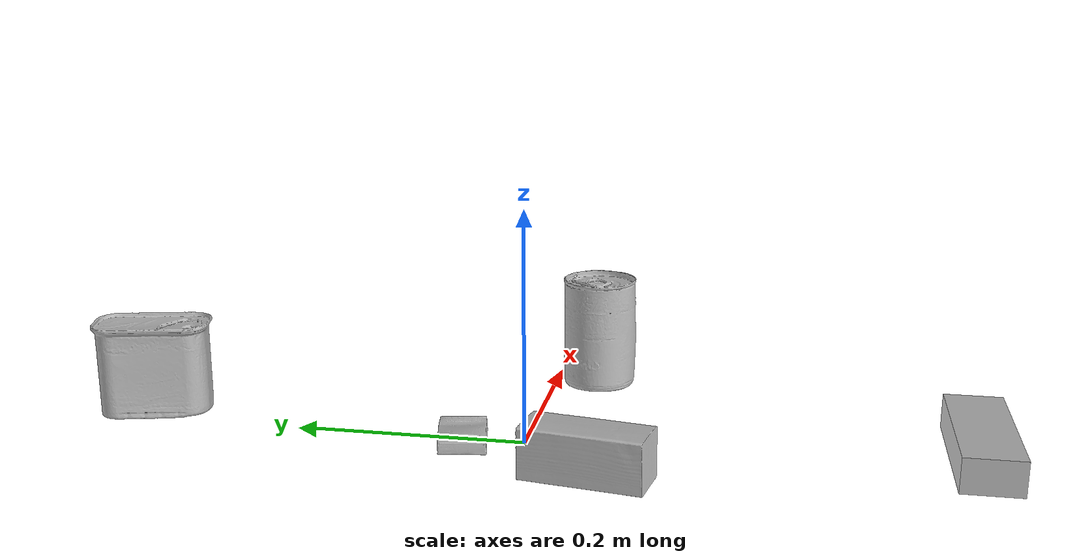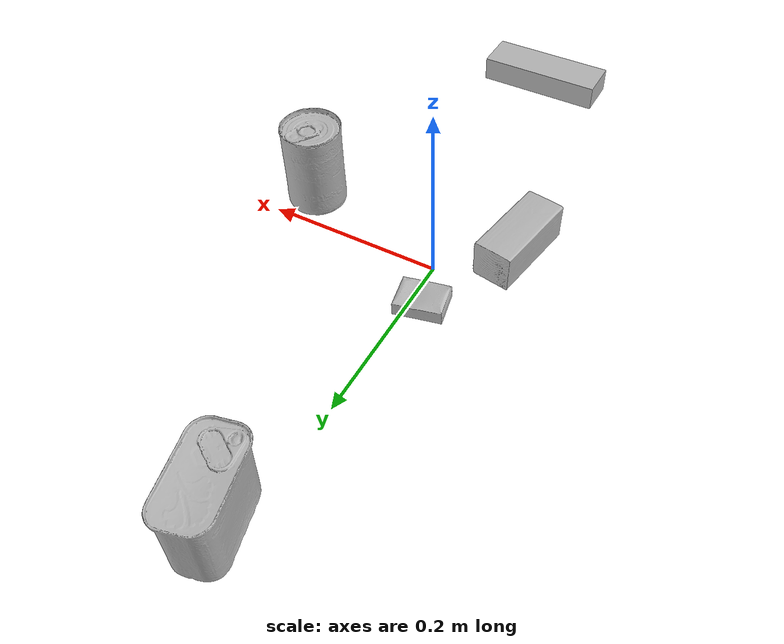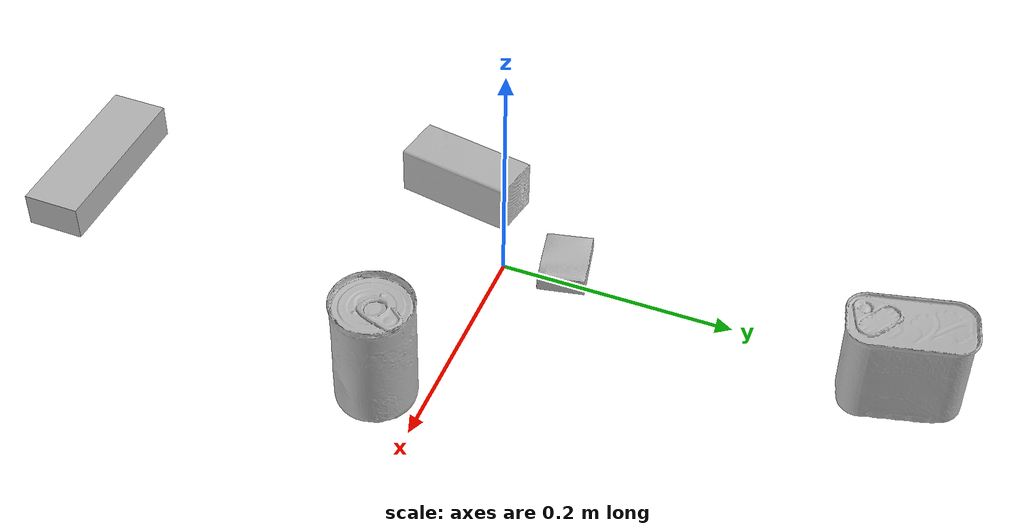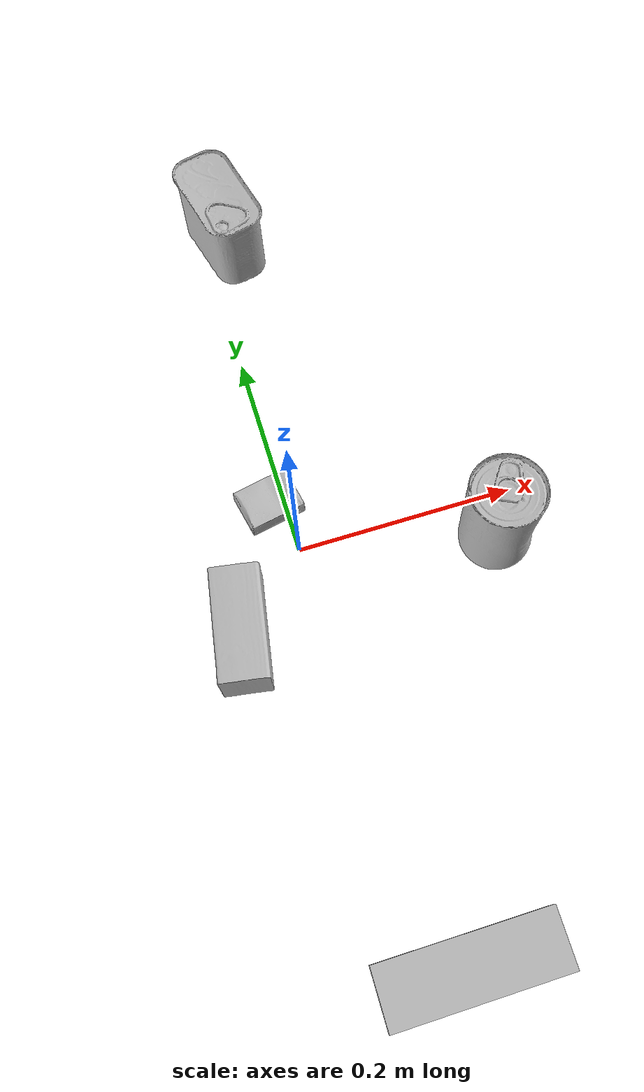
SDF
<sdf version="1.4">
  <world name="default">
    <light name="light1" type="point">
      <pose>0 0 1 0 0 0</pose>
      <diffuse>3 3 3 1</diffuse>
      <specular>3 3 3 1</specular>
    </light>
    <light name="light2" type="point">
      <pose>0 0.5 2 0 0 0</pose>
      <diffuse>1 1 1 1</diffuse>
      <specular>1 1 1 1</specular>
    </light>
    <light name="light3" type="point">
      <pose>0 0.5 2 0 0 0</pose>
      <diffuse>3 3 3 1</diffuse>
      <specular>3 3 3 1</specular>
    </light>
    <scene>
      <ambient>0.7 0.7 0.7</ambient>
    </scene>
    <model name="box1">
      <link name="link_box1">
        <collision name="default">
          <geometry>
            <mesh>
              <uri>model://jenga/collision_meshes/collision.obj</uri>
              <scale>1.0 1.0 1.0</scale>
            </mesh>
          </geometry>
          <surface>
            <friction>
              <ode>
                <mu>0.5</mu>
                <mu2>0.5</mu2>
              </ode>
            </friction>
          <contact>
        <ode>
            <max_vel>0</max_vel>
            <min_depth>0.0001</min_depth>
            <kp>1e8</kp>
        </ode>
    </contact></surface>
        </collision>
        <visual name="default">
          <geometry>
            <mesh>
              <uri>model://jenga/visual_meshes/visual.dae</uri>
              <scale>1.0 1.0 1.0</scale>
            </mesh>
          </geometry>
        </visual>
        <inertial>
          <mass>0.13349448144435883</mass>
          <pose>-2.502855807051674e-07 -0.00010250010382151231 -4.0923401684267446e-05 0.0 -7.342153480750062e-07 0.0</pose>
          <inertia>
            <ixx>3.694116e-05</ixx>
            <iyy>0.0002503123</iyy>
            <izz>0.00026722968</izz>
            <ixy>0</ixy>
            <ixz>0</ixz>
            <iyz>0</iyz>
          </inertia>
        </inertial>
      </link>
      <pose>0.02853676863014698 -0.37413161993026733 0.01499999687075615 -9.156069459077714e-10 -4.463721314604737e-10 3.134935132103456</pose>
    </model>
    <model name="box2">
      <link name="link_box2">
        <collision name="default">
          <geometry>
            <mesh>
              <uri>model://cracker_box/collision_meshes/collision.obj</uri>
              <scale>0.25 0.25 0.25</scale>
            </mesh>
          </geometry>
          <surface>
            <friction>
              <ode>
                <mu>0.5</mu>
                <mu2>0.5</mu2>
              </ode>
            </friction>
          <contact>
        <ode>
            <max_vel>0</max_vel>
            <min_depth>0.0001</min_depth>
            <kp>1e8</kp>
        </ode>
    </contact></surface>
        </collision>
        <visual name="default">
          <geometry>
            <mesh>
              <uri>model://cracker_box/visual_meshes/visual.dae</uri>
              <scale>0.25 0.25 0.25</scale>
            </mesh>
          </geometry>
        </visual>
        <inertial>
          <mass>0.02145323157310486</mass>
          <pose>0.00023660292208660394 6.358561950037256e-05 -0.00042573839891701937 -0.00031620765701486096 -0.011106487737550933 0.0025467954675071156</pose>
          <inertia>
            <ixx>3.4104648e-06</ixx>
            <iyy>5.631348e-06</iyy>
            <izz>8.036451e-06</izz>
            <ixy>0</ixy>
            <ixz>0</ixz>
            <iyz>0</iyz>
          </inertia>
        </inertial>
      </link>
      <pose>-0.013963616453111172 0.050197407603263855 0.009120446629822254 -0.011787944667111944 -0.007367141753743327 -2.94231666423137</pose>
    </model>
    <model name="box3">
      <link name="link_box3">
        <collision name="default">
          <geometry>
            <mesh>
              <uri>model://wood_block/collision_meshes/collision.obj</uri>
              <scale>0.5 0.5 0.5</scale>
            </mesh>
          </geometry>
          <surface>
            <friction>
              <ode>
                <mu>0.5</mu>
                <mu2>0.5</mu2>
              </ode>
            </friction>
          <contact>
        <ode>
            <max_vel>0</max_vel>
            <min_depth>0.0001</min_depth>
            <kp>1e8</kp>
        </ode>
    </contact></surface>
        </collision>
        <visual name="default">
          <geometry>
            <mesh>
              <uri>model://wood_block/visual_meshes/visual.dae</uri>
              <scale>0.5 0.5 0.5</scale>
            </mesh>
          </geometry>
        </visual>
        <inertial>
          <mass>0.16313479840755463</mass>
          <pose>-2.9066577553749084e-06 -0.000285404734313488 0.00013204291462898254 -0.05221116552051519 -0.005192696094342747 -0.006861377806143115</pose>
          <inertia>
            <ixx>5.457476e-05</ixx>
            <iyy>0.00017240169</iyy>
            <izz>0.00017175681</izz>
            <ixy>0</ixy>
            <ixz>0</ixz>
            <iyz>0</iyz>
          </inertia>
        </inertial>
      </link>
      <pose>-0.06978724896907806 -0.0626181960105896 0.0226292721927166 -0.005208628071999541 0.005718766115459584 1.4023197657649635</pose>
    </model>
    <model name="can1">
      <link name="link_can1">
        <collision name="default">
          <geometry>
            <mesh>
              <uri>model://potted_meat_can/collision_meshes/collision.obj</uri>
              <scale>1.0 1.0 1.0</scale>
            </mesh>
          </geometry>
          <surface>
            <friction>
              <ode>
                <mu>0.5</mu>
                <mu2>0.5</mu2>
              </ode>
            </friction>
          <contact>
        <ode>
            <max_vel>0</max_vel>
            <min_depth>0.0001</min_depth>
            <kp>1e8</kp>
        </ode>
    </contact></surface>
        </collision>
        <visual name="default">
          <geometry>
            <mesh>
              <uri>model://potted_meat_can/visual_meshes/visual.dae</uri>
              <scale>1.0 1.0 1.0</scale>
            </mesh>
          </geometry>
        </visual>
        <inertial>
          <mass>0.5782443881034851</mass>
          <pose>0.00022888134117238224 -5.989118290017359e-05 -0.0006367441383190453 -0.028093373189925445 -0.007232601430987569 0.015406267190211613</pose>
          <inertia>
            <ixx>0.0007438508</ixx>
            <iyy>0.00045194585</iyy>
            <izz>0.0005410098</izz>
            <ixy>0</ixy>
            <ixz>0</ixz>
            <iyz>0</iyz>
          </inertia>
        </inertial>
      </link>
      <pose>0.02147030085325241 0.34015199542045593 0.04212800785899162 -7.492997877875199e-08 -4.2434251836557595e-07 0.2246580880144669</pose>
    </model>
    <model name="can2">
      <link name="link_can2">
        <collision name="default">
          <geometry>
            <mesh>
              <uri>model://tomato_soup_can/collision_meshes/collision.obj</uri>
              <scale>1.0 1.0 1.0</scale>
            </mesh>
          </geometry>
          <surface>
            <friction>
              <ode>
                <mu>0.5</mu>
                <mu2>0.5</mu2>
              </ode>
            </friction>
          <contact>
        <ode>
            <max_vel>0</max_vel>
            <min_depth>0.0001</min_depth>
            <kp>1e8</kp>
        </ode>
    </contact></surface>
        </collision>
        <visual name="default">
          <geometry>
            <mesh>
              <uri>model://tomato_soup_can/visual_meshes/visual.dae</uri>
              <scale>1.0 1.0 1.0</scale>
            </mesh>
          </geometry>
        </visual>
        <inertial>
          <mass>0.191082164645195</mass>
          <pose>0.00012652273289859295 0.00010805522470036522 -0.0017973986687138677 0.007020071598615513 0.0004229929517945175 -0.009903241323856832</pose>
          <inertia>
            <ixx>0.0002095054</ixx>
            <iyy>0.00020829454</iyy>
            <izz>0.0001085847</izz>
            <ixy>0</ixy>
            <ixz>0</ixz>
            <iyz>0</iyz>
          </inertia>
        </inertial>
      </link>
      <pose>0.17162680625915527 -0.039712775498628616 0.05127400904893875 -5.956335366392086e-07 -9.853014270570662e-07 2.4071594378293986</pose>
    </model>
  <physics type="ode">
      <max_contacts>50</max_contacts>
      <ode>
        <solver>
          <type>quick</type>
          <iters>75</iters>
        </solver>
        <constraints>
          <contact_max_correcting_vel>0</contact_max_correcting_vel>
          <contact_surface_layer>0</contact_surface_layer>
        </constraints>
      </ode>
    </physics></world>
</sdf>
